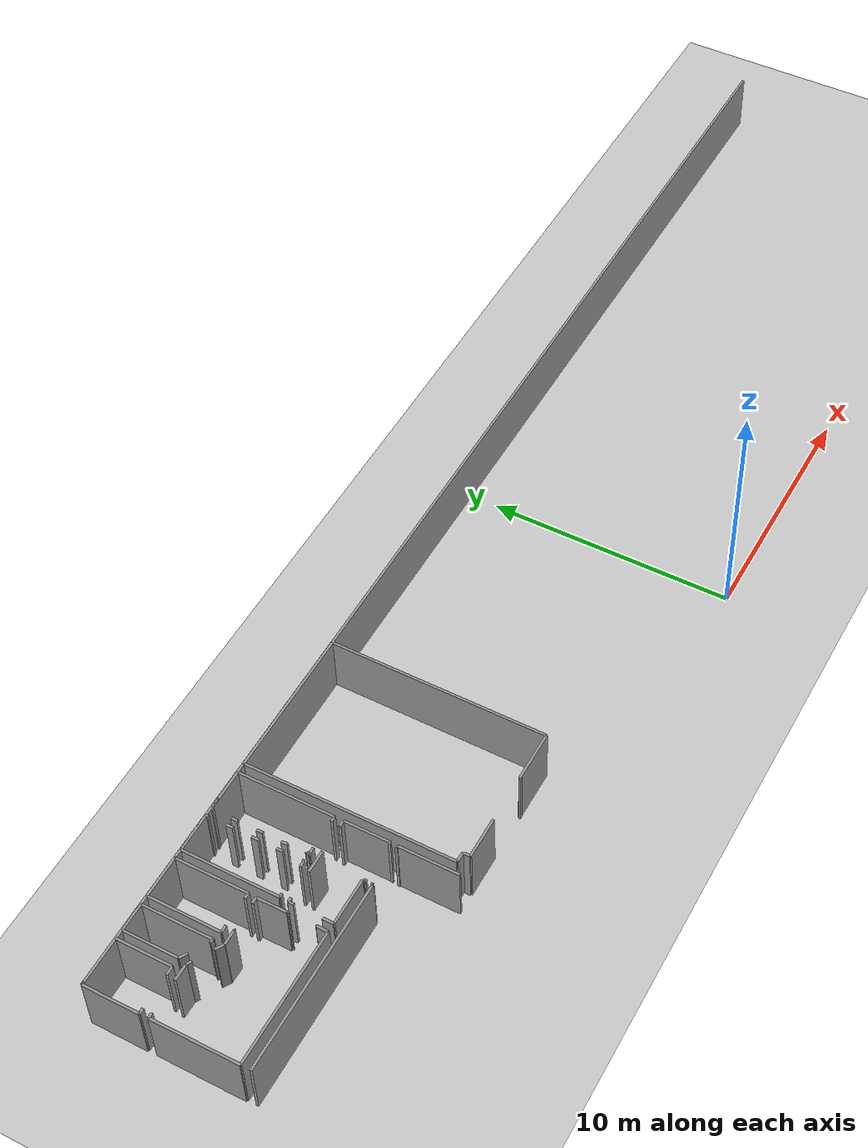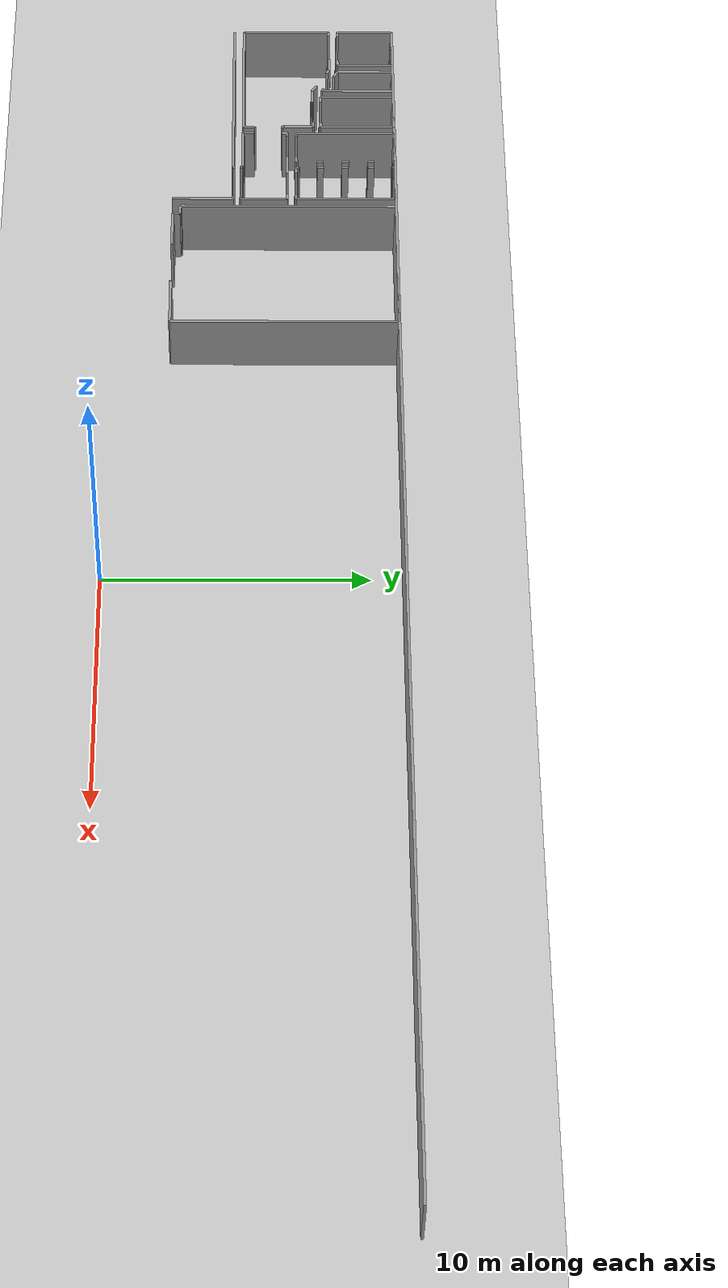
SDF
<sdf version="1.6">
 <world name="default">
  <model name="ground_plane">
   <static>1</static>
   <link name="link">
    <collision name="collision">
     <geometry><plane><normal>0 0 1</normal><size>100 100</size></plane></geometry>
     <surface><friction><ode><mu>100</mu><mu2>50</mu2></ode></friction></surface>
    </collision>
    <visual name="visual">
     <cast_shadows>0</cast_shadows>
     <geometry><plane><normal>0 0 1</normal><size>100 100</size></plane></geometry>
     <material>
      <script><uri>file://media/materials/scripts/gazebo.material</uri><name>Gazebo/Grey</name></script>
     </material>
    </visual>
   </link>
  </model>
  <model name="0510030938_A_40_1_102">
   <static>1</static>
   <link name="Wall_1">
    <collision name="Wall_1_Collision">
     <geometry><box><size>7.57650856591 0.1 2.5</size></box></geometry>
     <pose>3.78825428295 0 1.25 0 0 0</pose>
    </collision>
    <visual name="Wall_1_Visual">
     <pose>3.78825428295 0 1.25 0 0 0</pose>
     <geometry><box><size>7.57650856591 0.1 2.5</size></box></geometry>
     <material>
      <script><uri>file://media/materials/scripts/gazebo.material</uri><name>Gazebo/Grey</name></script>
      <ambient>1 1 1 1</ambient>
     </material>
    </visual>
    <pose>0.00724416653958 -6.43104061817 0 0 0 0.0</pose>
   </link>
   <link name="Wall_2">
    <collision name="Wall_2_Collision">
     <geometry><box><size>0.0350770169285 0.1 2.5</size></box></geometry>
     <pose>0.0175385084642 0 1.25 0 0 0</pose>
    </collision>
    <visual name="Wall_2_Visual">
     <pose>0.0175385084642 0 1.25 0 0 0</pose>
     <geometry><box><size>0.0350770169285 0.1 2.5</size></box></geometry>
     <material>
      <script><uri>file://media/materials/scripts/gazebo.material</uri><name>Gazebo/Grey</name></script>
      <ambient>1 1 1 1</ambient>
     </material>
    </visual>
    <pose>7.58375273245 -6.43104061817 0 0 0 1.57079632679</pose>
   </link>
   <link name="Wall_3">
    <collision name="Wall_3_Collision">
     <geometry><box><size>0.0847694575771 0.1 2.5</size></box></geometry>
     <pose>0.0423847287886 0 1.25 0 0 0</pose>
    </collision>
    <visual name="Wall_3_Visual">
     <pose>0.0423847287886 0 1.25 0 0 0</pose>
     <geometry><box><size>0.0847694575771 0.1 2.5</size></box></geometry>
     <material>
      <script><uri>file://media/materials/scripts/gazebo.material</uri><name>Gazebo/Grey</name></script>
      <ambient>1 1 1 1</ambient>
     </material>
    </visual>
    <pose>7.58375273245 -6.39596360124 0 0 0 0.0</pose>
   </link>
   <link name="Wall_4">
    <collision name="Wall_4_Collision">
     <geometry><box><size>0.0874383610391 0.1 2.5</size></box></geometry>
     <pose>0.0437191805195 0 1.25 0 0 0</pose>
    </collision>
    <visual name="Wall_4_Visual">
     <pose>0.0437191805195 0 1.25 0 0 0</pose>
     <geometry><box><size>0.0874383610391 0.1 2.5</size></box></geometry>
     <material>
      <script><uri>file://media/materials/scripts/gazebo.material</uri><name>Gazebo/Grey</name></script>
      <ambient>1 1 1 1</ambient>
     </material>
    </visual>
    <pose>9.22500127091 -6.39596360124 0 0 0 0.0</pose>
   </link>
   <link name="Wall_5">
    <collision name="Wall_5_Collision">
     <geometry><box><size>2.42018707742 0.1 2.5</size></box></geometry>
     <pose>1.21009353871 0 1.25 0 0 0</pose>
    </collision>
    <visual name="Wall_5_Visual">
     <pose>1.21009353871 0 1.25 0 0 0</pose>
     <geometry><box><size>2.42018707742 0.1 2.5</size></box></geometry>
     <material>
      <script><uri>file://media/materials/scripts/gazebo.material</uri><name>Gazebo/Grey</name></script>
      <ambient>1 1 1 1</ambient>
     </material>
    </visual>
    <pose>9.31243963195 -6.39596360124 0 0 0 -1.57079632679</pose>
   </link>
   <link name="Wall_19">
    <collision name="Wall_19_Collision">
     <geometry><box><size>0.436047989426 0.1 2.5</size></box></geometry>
     <pose>0.218023994713 0 1.25 0 0 0</pose>
    </collision>
    <visual name="Wall_19_Visual">
     <pose>0.218023994713 0 1.25 0 0 0</pose>
     <geometry><box><size>0.436047989426 0.1 2.5</size></box></geometry>
     <material>
      <script><uri>file://media/materials/scripts/gazebo.material</uri><name>Gazebo/Grey</name></script>
      <ambient>1 1 1 1</ambient>
     </material>
    </visual>
    <pose>5.7366173555 -6.04138071272 0 0 0 1.57079632679</pose>
   </link>
   <link name="Wall_20">
    <collision name="Wall_20_Collision">
     <geometry><box><size>0.213131005033 0.1 2.5</size></box></geometry>
     <pose>0.106565502516 0 1.25 0 0 0</pose>
    </collision>
    <visual name="Wall_20_Visual">
     <pose>0.106565502516 0 1.25 0 0 0</pose>
     <geometry><box><size>0.213131005033 0.1 2.5</size></box></geometry>
     <material>
      <script><uri>file://media/materials/scripts/gazebo.material</uri><name>Gazebo/Grey</name></script>
      <ambient>1 1 1 1</ambient>
     </material>
    </visual>
    <pose>5.7366173555 -4.48731635402 0 0 0 1.57079632679</pose>
   </link>
   <link name="Wall_21">
    <collision name="Wall_21_Collision">
     <geometry><box><size>0.17144527477 0.1 2.5</size></box></geometry>
     <pose>0.085722637385 0 1.25 0 0 0</pose>
    </collision>
    <visual name="Wall_21_Visual">
     <pose>0.085722637385 0 1.25 0 0 0</pose>
     <geometry><box><size>0.17144527477 0.1 2.5</size></box></geometry>
     <material>
      <script><uri>file://media/materials/scripts/gazebo.material</uri><name>Gazebo/Grey</name></script>
      <ambient>1 1 1 1</ambient>
     </material>
    </visual>
    <pose>5.7366173555 -4.27418534899 0 0 0 0.0</pose>
   </link>
   <link name="Wall_22">
    <collision name="Wall_22_Collision">
     <geometry><box><size>0.904758273601 0.1 2.5</size></box></geometry>
     <pose>0.4523791368 0 1.25 0 0 0</pose>
    </collision>
    <visual name="Wall_22_Visual">
     <pose>0.4523791368 0 1.25 0 0 0</pose>
     <geometry><box><size>0.904758273601 0.1 2.5</size></box></geometry>
     <material>
      <script><uri>file://media/materials/scripts/gazebo.material</uri><name>Gazebo/Grey</name></script>
      <ambient>1 1 1 1</ambient>
     </material>
    </visual>
    <pose>7.02951044685 -4.27418534899 0 0 0 0.0</pose>
   </link>
   <link name="Wall_23">
    <collision name="Wall_23_Collision">
     <geometry><box><size>0.254435463372 0.1 2.5</size></box></geometry>
     <pose>0.127217731686 0 1.25 0 0 0</pose>
    </collision>
    <visual name="Wall_23_Visual">
     <pose>0.127217731686 0 1.25 0 0 0</pose>
     <geometry><box><size>0.254435463372 0.1 2.5</size></box></geometry>
     <material>
      <script><uri>file://media/materials/scripts/gazebo.material</uri><name>Gazebo/Grey</name></script>
      <ambient>1 1 1 1</ambient>
     </material>
    </visual>
    <pose>9.06524833511 -4.27418534899 0 0 0 0.0</pose>
   </link>
   <link name="Wall_24">
    <collision name="Wall_24_Collision">
     <geometry><box><size>1.84039957298 0.1 2.5</size></box></geometry>
     <pose>0.920199786488 0 1.25 0 0 0</pose>
    </collision>
    <visual name="Wall_24_Visual">
     <pose>0.920199786488 0 1.25 0 0 0</pose>
     <geometry><box><size>1.84039957298 0.1 2.5</size></box></geometry>
     <material>
      <script><uri>file://media/materials/scripts/gazebo.material</uri><name>Gazebo/Grey</name></script>
      <ambient>1 1 1 1</ambient>
     </material>
    </visual>
    <pose>9.31968379849 -4.27418534899 0 0 0 -1.57079632679</pose>
   </link>
   <link name="Wall_25">
    <collision name="Wall_25_Collision">
     <geometry><box><size>0.0721874841137 0.1 2.5</size></box></geometry>
     <pose>0.0360937420568 0 1.25 0 0 0</pose>
    </collision>
    <visual name="Wall_25_Visual">
     <pose>0.0360937420568 0 1.25 0 0 0</pose>
     <geometry><box><size>0.0721874841137 0.1 2.5</size></box></geometry>
     <material>
      <script><uri>file://media/materials/scripts/gazebo.material</uri><name>Gazebo/Grey</name></script>
      <ambient>1 1 1 1</ambient>
     </material>
    </visual>
    <pose>9.31968379849 -6.11458492197 0 0 0 3.14159265359</pose>
   </link>
   <link name="Wall_26">
    <collision name="Wall_26_Collision">
     <geometry><box><size>0.0908698083473 0.1 2.5</size></box></geometry>
     <pose>0.0454349041737 0 1.25 0 0 0</pose>
    </collision>
    <visual name="Wall_26_Visual">
     <pose>0.0454349041737 0 1.25 0 0 0</pose>
     <geometry><box><size>0.0908698083473 0.1 2.5</size></box></geometry>
     <material>
      <script><uri>file://media/materials/scripts/gazebo.material</uri><name>Gazebo/Grey</name></script>
      <ambient>1 1 1 1</ambient>
     </material>
    </visual>
    <pose>7.69241523054 -6.11458492197 0 0 0 3.14159265359</pose>
   </link>
   <link name="Wall_27">
    <collision name="Wall_27_Collision">
     <geometry><box><size>0.0828630979615 0.1 2.5</size></box></geometry>
     <pose>0.0414315489807 0 1.25 0 0 0</pose>
    </collision>
    <visual name="Wall_27_Visual">
     <pose>0.0414315489807 0 1.25 0 0 0</pose>
     <geometry><box><size>0.0828630979615 0.1 2.5</size></box></geometry>
     <material>
      <script><uri>file://media/materials/scripts/gazebo.material</uri><name>Gazebo/Grey</name></script>
      <ambient>1 1 1 1</ambient>
     </material>
    </visual>
    <pose>7.6015454222 -6.11458492197 0 0 0 1.57079632679</pose>
   </link>
   <link name="Wall_28">
    <collision name="Wall_28_Collision">
     <geometry><box><size>1.86495307933 0.1 2.5</size></box></geometry>
     <pose>0.932476539663 0 1.25 0 0 0</pose>
    </collision>
    <visual name="Wall_28_Visual">
     <pose>0.932476539663 0 1.25 0 0 0</pose>
     <geometry><box><size>1.86495307933 0.1 2.5</size></box></geometry>
     <material>
      <script><uri>file://media/materials/scripts/gazebo.material</uri><name>Gazebo/Grey</name></script>
      <ambient>1 1 1 1</ambient>
     </material>
    </visual>
    <pose>7.6015454222 -6.031721824 0 0 0 -3.13641347133</pose>
   </link>
   <link name="Wall_29">
    <collision name="Wall_29_Collision">
     <geometry><box><size>3.47059122566 0.1 2.5</size></box></geometry>
     <pose>1.73529561283 0 1.25 0 0 0</pose>
    </collision>
    <visual name="Wall_29_Visual">
     <pose>1.73529561283 0 1.25 0 0 0</pose>
     <geometry><box><size>3.47059122566 0.1 2.5</size></box></geometry>
     <material>
      <script><uri>file://media/materials/scripts/gazebo.material</uri><name>Gazebo/Grey</name></script>
      <ambient>1 1 1 1</ambient>
     </material>
    </visual>
    <pose>0.016775964618 -6.04112653144 0 0 0 1.57079632679</pose>
   </link>
   <link name="Wall_30">
    <collision name="Wall_30_Collision">
     <geometry><box><size>0.20067612221 0.1 2.5</size></box></geometry>
     <pose>0.100338061105 0 1.25 0 0 0</pose>
    </collision>
    <visual name="Wall_30_Visual">
     <pose>0.100338061105 0 1.25 0 0 0</pose>
     <geometry><box><size>0.20067612221 0.1 2.5</size></box></geometry>
     <material>
      <script><uri>file://media/materials/scripts/gazebo.material</uri><name>Gazebo/Grey</name></script>
      <ambient>1 1 1 1</ambient>
     </material>
    </visual>
    <pose>0.016775964618 -2.57053530578 0 0 0 0.0</pose>
   </link>
   <link name="Wall_31">
    <collision name="Wall_31_Collision">
     <geometry><box><size>0.654516801383 0.1 2.5</size></box></geometry>
     <pose>0.327258400691 0 1.25 0 0 0</pose>
    </collision>
    <visual name="Wall_31_Visual">
     <pose>0.327258400691 0 1.25 0 0 0</pose>
     <geometry><box><size>0.654516801383 0.1 2.5</size></box></geometry>
     <material>
      <script><uri>file://media/materials/scripts/gazebo.material</uri><name>Gazebo/Grey</name></script>
      <ambient>1 1 1 1</ambient>
     </material>
    </visual>
    <pose>1.53144222459 -2.57053530578 0 0 0 0.0</pose>
   </link>
   <link name="Wall_32">
    <collision name="Wall_32_Collision">
     <geometry><box><size>0.209723164445 0.1 2.5</size></box></geometry>
     <pose>0.104861582223 0 1.25 0 0 0</pose>
    </collision>
    <visual name="Wall_32_Visual">
     <pose>0.104861582223 0 1.25 0 0 0</pose>
     <geometry><box><size>0.209723164445 0.1 2.5</size></box></geometry>
     <material>
      <script><uri>file://media/materials/scripts/gazebo.material</uri><name>Gazebo/Grey</name></script>
      <ambient>1 1 1 1</ambient>
     </material>
    </visual>
    <pose>2.18595902598 -2.57053530578 0 0 0 -0.524933782635</pose>
   </link>
   <link name="Wall_33">
    <collision name="Wall_33_Collision">
     <geometry><box><size>0.343461699112 0.1 2.5</size></box></geometry>
     <pose>0.171730849556 0 1.25 0 0 0</pose>
    </collision>
    <visual name="Wall_33_Visual">
     <pose>0.171730849556 0 1.25 0 0 0</pose>
     <geometry><box><size>0.343461699112 0.1 2.5</size></box></geometry>
     <material>
      <script><uri>file://media/materials/scripts/gazebo.material</uri><name>Gazebo/Grey</name></script>
      <ambient>1 1 1 1</ambient>
     </material>
    </visual>
    <pose>3.08868384932 -3.0904631183 0 0 0 -0.563266863326</pose>
   </link>
   <link name="Wall_34">
    <collision name="Wall_34_Collision">
     <geometry><box><size>0.625158863301 0.1 2.5</size></box></geometry>
     <pose>0.312579431651 0 1.25 0 0 0</pose>
    </collision>
    <visual name="Wall_34_Visual">
     <pose>0.312579431651 0 1.25 0 0 0</pose>
     <geometry><box><size>0.625158863301 0.1 2.5</size></box></geometry>
     <material>
      <script><uri>file://media/materials/scripts/gazebo.material</uri><name>Gazebo/Grey</name></script>
      <ambient>1 1 1 1</ambient>
     </material>
    </visual>
    <pose>3.37908596411 -3.27385491332 0 0 0 0.0</pose>
   </link>
   <link name="Wall_35">
    <collision name="Wall_35_Collision">
     <geometry><box><size>0.0219866809008 0.1 2.5</size></box></geometry>
     <pose>0.0109933404504 0 1.25 0 0 0</pose>
    </collision>
    <visual name="Wall_35_Visual">
     <pose>0.0109933404504 0 1.25 0 0 0</pose>
     <geometry><box><size>0.0219866809008 0.1 2.5</size></box></geometry>
     <material>
      <script><uri>file://media/materials/scripts/gazebo.material</uri><name>Gazebo/Grey</name></script>
      <ambient>1 1 1 1</ambient>
     </material>
    </visual>
    <pose>4.00424482741 -3.27385491332 0 0 0 1.57079632679</pose>
   </link>
   <link name="Wall_36">
    <collision name="Wall_36_Collision">
     <geometry><box><size>0.245793299781 0.1 2.5</size></box></geometry>
     <pose>0.122896649891 0 1.25 0 0 0</pose>
    </collision>
    <visual name="Wall_36_Visual">
     <pose>0.122896649891 0 1.25 0 0 0</pose>
     <geometry><box><size>0.245793299781 0.1 2.5</size></box></geometry>
     <material>
      <script><uri>file://media/materials/scripts/gazebo.material</uri><name>Gazebo/Grey</name></script>
      <ambient>1 1 1 1</ambient>
     </material>
    </visual>
    <pose>5.12899700066 -3.25186823242 0 0 0 0.0</pose>
   </link>
   <link name="Wall_37">
    <collision name="Wall_37_Collision">
     <geometry><box><size>1.20647145544 0.1 2.5</size></box></geometry>
     <pose>0.603235727721 0 1.25 0 0 0</pose>
    </collision>
    <visual name="Wall_37_Visual">
     <pose>0.603235727721 0 1.25 0 0 0</pose>
     <geometry><box><size>1.20647145544 0.1 2.5</size></box></geometry>
     <material>
      <script><uri>file://media/materials/scripts/gazebo.material</uri><name>Gazebo/Grey</name></script>
      <ambient>1 1 1 1</ambient>
     </material>
    </visual>
    <pose>5.37479030044 -3.25186823242 0 0 0 -1.57079632679</pose>
   </link>
   <link name="Wall_38">
    <collision name="Wall_38_Collision">
     <geometry><box><size>0.0491840780845 0.1 2.5</size></box></geometry>
     <pose>0.0245920390422 0 1.25 0 0 0</pose>
    </collision>
    <visual name="Wall_38_Visual">
     <pose>0.0245920390422 0 1.25 0 0 0</pose>
     <geometry><box><size>0.0491840780845 0.1 2.5</size></box></geometry>
     <material>
      <script><uri>file://media/materials/scripts/gazebo.material</uri><name>Gazebo/Grey</name></script>
      <ambient>1 1 1 1</ambient>
     </material>
    </visual>
    <pose>5.37479030044 -4.45833968787 0 0 0 0.0</pose>
   </link>
   <link name="Wall_39">
    <collision name="Wall_39_Collision">
     <geometry><box><size>0.0334248385949 0.1 2.5</size></box></geometry>
     <pose>0.0167124192974 0 1.25 0 0 0</pose>
    </collision>
    <visual name="Wall_39_Visual">
     <pose>0.0167124192974 0 1.25 0 0 0</pose>
     <geometry><box><size>0.0334248385949 0.1 2.5</size></box></geometry>
     <material>
      <script><uri>file://media/materials/scripts/gazebo.material</uri><name>Gazebo/Grey</name></script>
      <ambient>1 1 1 1</ambient>
     </material>
    </visual>
    <pose>5.42397437853 -5.59008184637 0 0 0 3.14159265359</pose>
   </link>
   <link name="Wall_40">
    <collision name="Wall_40_Collision">
     <geometry><box><size>0.445452696863 0.1 2.5</size></box></geometry>
     <pose>0.222726348432 0 1.25 0 0 0</pose>
    </collision>
    <visual name="Wall_40_Visual">
     <pose>0.222726348432 0 1.25 0 0 0</pose>
     <geometry><box><size>0.445452696863 0.1 2.5</size></box></geometry>
     <material>
      <script><uri>file://media/materials/scripts/gazebo.material</uri><name>Gazebo/Grey</name></script>
      <ambient>1 1 1 1</ambient>
     </material>
    </visual>
    <pose>5.39054953993 -5.59008184637 0 0 0 -1.57079632679</pose>
   </link>
   <link name="Wall_41">
    <collision name="Wall_41_Collision">
     <geometry><box><size>5.37377648485 0.1 2.5</size></box></geometry>
     <pose>2.68688824242 0 1.25 0 0 0</pose>
    </collision>
    <visual name="Wall_41_Visual">
     <pose>2.68688824242 0 1.25 0 0 0</pose>
     <geometry><box><size>5.37377648485 0.1 2.5</size></box></geometry>
     <material>
      <script><uri>file://media/materials/scripts/gazebo.material</uri><name>Gazebo/Grey</name></script>
      <ambient>1 1 1 1</ambient>
     </material>
    </visual>
    <pose>5.39054953993 -6.03553454324 0 0 0 -3.14055204663</pose>
   </link>
   <link name="Wall_42">
    <collision name="Wall_42_Collision">
     <geometry><box><size>2.23044075034 0.1 2.5</size></box></geometry>
     <pose>1.11522037517 0 1.25 0 0 0</pose>
    </collision>
    <visual name="Wall_42_Visual">
     <pose>1.11522037517 0 1.25 0 0 0</pose>
     <geometry><box><size>2.23044075034 0.1 2.5</size></box></geometry>
     <material>
      <script><uri>file://media/materials/scripts/gazebo.material</uri><name>Gazebo/Grey</name></script>
      <ambient>1 1 1 1</ambient>
     </material>
    </visual>
    <pose>0.0 -2.23044075034 0 0 0 1.57079632679</pose>
   </link>
   <link name="Wall_43">
    <collision name="Wall_43_Collision">
     <geometry><box><size>1.91360378222 0.1 2.5</size></box></geometry>
     <pose>0.956801891109 0 1.25 0 0 0</pose>
    </collision>
    <visual name="Wall_43_Visual">
     <pose>0.956801891109 0 1.25 0 0 0</pose>
     <geometry><box><size>1.91360378222 0.1 2.5</size></box></geometry>
     <material>
      <script><uri>file://media/materials/scripts/gazebo.material</uri><name>Gazebo/Grey</name></script>
      <ambient>1 1 1 1</ambient>
     </material>
    </visual>
   </link>
   <link name="Wall_44">
    <collision name="Wall_44_Collision">
     <geometry><box><size>2.22217985868 0.1 2.5</size></box></geometry>
     <pose>1.11108992934 0 1.25 0 0 0</pose>
    </collision>
    <visual name="Wall_44_Visual">
     <pose>1.11108992934 0 1.25 0 0 0</pose>
     <geometry><box><size>2.22217985868 0.1 2.5</size></box></geometry>
     <material>
      <script><uri>file://media/materials/scripts/gazebo.material</uri><name>Gazebo/Grey</name></script>
      <ambient>1 1 1 1</ambient>
     </material>
    </visual>
    <pose>1.91360378222 -0.0 0 0 0 -1.57079632679</pose>
   </link>
   <link name="Wall_45">
    <collision name="Wall_45_Collision">
     <geometry><box><size>0.334883839154 0.1 2.5</size></box></geometry>
     <pose>0.167441919577 0 1.25 0 0 0</pose>
    </collision>
    <visual name="Wall_45_Visual">
     <pose>0.167441919577 0 1.25 0 0 0</pose>
     <geometry><box><size>0.334883839154 0.1 2.5</size></box></geometry>
     <material>
      <script><uri>file://media/materials/scripts/gazebo.material</uri><name>Gazebo/Grey</name></script>
      <ambient>1 1 1 1</ambient>
     </material>
    </visual>
    <pose>1.91360378222 -2.22217985868 0 0 0 3.14159265359</pose>
   </link>
   <link name="Wall_46">
    <collision name="Wall_46_Collision">
     <geometry><box><size>0.22192697144 0.1 2.5</size></box></geometry>
     <pose>0.11096348572 0 1.25 0 0 0</pose>
    </collision>
    <visual name="Wall_46_Visual">
     <pose>0.11096348572 0 1.25 0 0 0</pose>
     <geometry><box><size>0.22192697144 0.1 2.5</size></box></geometry>
     <material>
      <script><uri>file://media/materials/scripts/gazebo.material</uri><name>Gazebo/Grey</name></script>
      <ambient>1 1 1 1</ambient>
     </material>
    </visual>
    <pose>0.221773168624 -2.22217985868 0 0 0 -3.1043605835</pose>
   </link>
   <link name="Wall_47">
    <collision name="Wall_47_Collision">
     <geometry><box><size>2.2005744497 0.1 2.5</size></box></geometry>
     <pose>1.10028722485 0 1.25 0 0 0</pose>
    </collision>
    <visual name="Wall_47_Visual">
     <pose>1.10028722485 0 1.25 0 0 0</pose>
     <geometry><box><size>2.2005744497 0.1 2.5</size></box></geometry>
     <material>
      <script><uri>file://media/materials/scripts/gazebo.material</uri><name>Gazebo/Grey</name></script>
      <ambient>1 1 1 1</ambient>
     </material>
    </visual>
    <pose>2.26793248945 -2.21366478573 0 0 0 1.57079632679</pose>
   </link>
   <link name="Wall_48">
    <collision name="Wall_48_Collision">
     <geometry><box><size>1.10174876722 0.1 2.5</size></box></geometry>
     <pose>0.55087438361 0 1.25 0 0 0</pose>
    </collision>
    <visual name="Wall_48_Visual">
     <pose>0.55087438361 0 1.25 0 0 0</pose>
     <geometry><box><size>1.10174876722 0.1 2.5</size></box></geometry>
     <material>
      <script><uri>file://media/materials/scripts/gazebo.material</uri><name>Gazebo/Grey</name></script>
      <ambient>1 1 1 1</ambient>
     </material>
    </visual>
    <pose>2.26793248945 -0.0130903360277 0 0 0 0.0</pose>
   </link>
   <link name="Wall_49">
    <collision name="Wall_49_Collision">
     <geometry><box><size>2.85242234762 0.1 2.5</size></box></geometry>
     <pose>1.42621117381 0 1.25 0 0 0</pose>
    </collision>
    <visual name="Wall_49_Visual">
     <pose>1.42621117381 0 1.25 0 0 0</pose>
     <geometry><box><size>2.85242234762 0.1 2.5</size></box></geometry>
     <material>
      <script><uri>file://media/materials/scripts/gazebo.material</uri><name>Gazebo/Grey</name></script>
      <ambient>1 1 1 1</ambient>
     </material>
    </visual>
    <pose>3.36968125667 -0.0130903360277 0 0 0 -1.57079632679</pose>
   </link>
   <link name="Wall_50">
    <collision name="Wall_50_Collision">
     <geometry><box><size>0.139142894435 0.1 2.5</size></box></geometry>
     <pose>0.0695714472177 0 1.25 0 0 0</pose>
    </collision>
    <visual name="Wall_50_Visual">
     <pose>0.0695714472177 0 1.25 0 0 0</pose>
     <geometry><box><size>0.139142894435 0.1 2.5</size></box></geometry>
     <material>
      <script><uri>file://media/materials/scripts/gazebo.material</uri><name>Gazebo/Grey</name></script>
      <ambient>1 1 1 1</ambient>
     </material>
    </visual>
    <pose>3.36968125667 -2.86551268365 0 0 0 2.64771314672</pose>
   </link>
   <link name="Wall_51">
    <collision name="Wall_51_Collision">
     <geometry><box><size>0.337085327396 0.1 2.5</size></box></geometry>
     <pose>0.168542663698 0 1.25 0 0 0</pose>
    </collision>
    <visual name="Wall_51_Visual">
     <pose>0.168542663698 0 1.25 0 0 0</pose>
     <geometry><box><size>0.337085327396 0.1 2.5</size></box></geometry>
     <material>
      <script><uri>file://media/materials/scripts/gazebo.material</uri><name>Gazebo/Grey</name></script>
      <ambient>1 1 1 1</ambient>
     </material>
    </visual>
    <pose>2.54918407808 -2.39947130293 0 0 0 2.55777281348</pose>
   </link>
   <link name="Wall_52">
    <collision name="Wall_52_Collision">
     <geometry><box><size>2.92994763866 0.1 2.5</size></box></geometry>
     <pose>1.46497381933 0 1.25 0 0 0</pose>
    </collision>
    <visual name="Wall_52_Visual">
     <pose>1.46497381933 0 1.25 0 0 0</pose>
     <geometry><box><size>2.92994763866 0.1 2.5</size></box></geometry>
     <material>
      <script><uri>file://media/materials/scripts/gazebo.material</uri><name>Gazebo/Grey</name></script>
      <ambient>1 1 1 1</ambient>
     </material>
    </visual>
    <pose>3.72718722993 -2.93261654212 0 0 0 1.57079632679</pose>
   </link>
   <link name="Wall_53">
    <collision name="Wall_53_Collision">
     <geometry><box><size>1.66323521936 0.1 2.5</size></box></geometry>
     <pose>0.831617609679 0 1.25 0 0 0</pose>
    </collision>
    <visual name="Wall_53_Visual">
     <pose>0.831617609679 0 1.25 0 0 0</pose>
     <geometry><box><size>1.66323521936 0.1 2.5</size></box></geometry>
     <material>
      <script><uri>file://media/materials/scripts/gazebo.material</uri><name>Gazebo/Grey</name></script>
      <ambient>1 1 1 1</ambient>
     </material>
    </visual>
    <pose>3.72718722993 -0.00266890346195 0 0 0 0.0</pose>
   </link>
   <link name="Wall_54">
    <collision name="Wall_54_Collision">
     <geometry><box><size>2.93401453917 0.1 2.5</size></box></geometry>
     <pose>1.46700726958 0 1.25 0 0 0</pose>
    </collision>
    <visual name="Wall_54_Visual">
     <pose>1.46700726958 0 1.25 0 0 0</pose>
     <geometry><box><size>2.93401453917 0.1 2.5</size></box></geometry>
     <material>
      <script><uri>file://media/materials/scripts/gazebo.material</uri><name>Gazebo/Grey</name></script>
      <ambient>1 1 1 1</ambient>
     </material>
    </visual>
    <pose>5.39042244929 -0.00266890346195 0 0 0 -1.57079632679</pose>
   </link>
   <link name="Wall_55">
    <collision name="Wall_55_Collision">
     <geometry><box><size>0.225331706573 0.1 2.5</size></box></geometry>
     <pose>0.112665853287 0 1.25 0 0 0</pose>
    </collision>
    <visual name="Wall_55_Visual">
     <pose>0.112665853287 0 1.25 0 0 0</pose>
     <geometry><box><size>0.225331706573 0.1 2.5</size></box></geometry>
     <material>
      <script><uri>file://media/materials/scripts/gazebo.material</uri><name>Gazebo/Grey</name></script>
      <ambient>1 1 1 1</ambient>
     </material>
    </visual>
    <pose>5.39042244929 -2.93668344263 0 0 0 3.14159265359</pose>
   </link>
   <link name="Wall_56">
    <collision name="Wall_56_Collision">
     <geometry><box><size>0.278104060691 0.1 2.5</size></box></geometry>
     <pose>0.139052030346 0 1.25 0 0 0</pose>
    </collision>
    <visual name="Wall_56_Visual">
     <pose>0.139052030346 0 1.25 0 0 0</pose>
     <geometry><box><size>0.278104060691 0.1 2.5</size></box></geometry>
     <material>
      <script><uri>file://media/materials/scripts/gazebo.material</uri><name>Gazebo/Grey</name></script>
      <ambient>1 1 1 1</ambient>
     </material>
    </visual>
    <pose>4.00526155254 -2.93668344263 0 0 0 3.1269684677</pose>
   </link>
   <link name="Wall_57">
    <collision name="Wall_57_Collision">
     <geometry><box><size>3.91057902496 0.1 2.5</size></box></geometry>
     <pose>1.95528951248 0 1.25 0 0 0</pose>
    </collision>
    <visual name="Wall_57_Visual">
     <pose>1.95528951248 0 1.25 0 0 0</pose>
     <geometry><box><size>3.91057902496 0.1 2.5</size></box></geometry>
     <material>
      <script><uri>file://media/materials/scripts/gazebo.material</uri><name>Gazebo/Grey</name></script>
      <ambient>1 1 1 1</ambient>
     </material>
    </visual>
    <pose>5.75555386101 -3.91833155406 0 0 0 1.57079632679</pose>
   </link>
   <link name="Wall_58">
    <collision name="Wall_58_Collision">
     <geometry><box><size>1.55660617152 0.1 2.5</size></box></geometry>
     <pose>0.778303085761 0 1.25 0 0 0</pose>
    </collision>
    <visual name="Wall_58_Visual">
     <pose>0.778303085761 0 1.25 0 0 0</pose>
     <geometry><box><size>1.55660617152 0.1 2.5</size></box></geometry>
     <material>
      <script><uri>file://media/materials/scripts/gazebo.material</uri><name>Gazebo/Grey</name></script>
      <ambient>1 1 1 1</ambient>
     </material>
    </visual>
    <pose>5.75555386101 -0.00775252910375 0 0 0 0.0</pose>
   </link>
   <link name="Wall_59">
    <collision name="Wall_59_Collision">
     <geometry><box><size>0.0996390625794 0.1 2.5</size></box></geometry>
     <pose>0.0498195312897 0 1.25 0 0 0</pose>
    </collision>
    <visual name="Wall_59_Visual">
     <pose>0.0498195312897 0 1.25 0 0 0</pose>
     <geometry><box><size>0.0996390625794 0.1 2.5</size></box></geometry>
     <material>
      <script><uri>file://media/materials/scripts/gazebo.material</uri><name>Gazebo/Grey</name></script>
      <ambient>1 1 1 1</ambient>
     </material>
    </visual>
    <pose>7.31216003254 -0.00775252910375 0 0 0 -1.57079632679</pose>
   </link>
   <link name="Wall_60">
    <collision name="Wall_60_Collision">
     <geometry><box><size>0.267017436836 0.1 2.5</size></box></geometry>
     <pose>0.133508718418 0 1.25 0 0 0</pose>
    </collision>
    <visual name="Wall_60_Visual">
     <pose>0.133508718418 0 1.25 0 0 0</pose>
     <geometry><box><size>0.267017436836 0.1 2.5</size></box></geometry>
     <material>
      <script><uri>file://media/materials/scripts/gazebo.material</uri><name>Gazebo/Grey</name></script>
      <ambient>1 1 1 1</ambient>
     </material>
    </visual>
    <pose>7.31216003254 -0.83295206141 0 0 0 -1.57079632679</pose>
   </link>
   <link name="Wall_61">
    <collision name="Wall_61_Collision">
     <geometry><box><size>0.276422144273 0.1 2.5</size></box></geometry>
     <pose>0.138211072137 0 1.25 0 0 0</pose>
    </collision>
    <visual name="Wall_61_Visual">
     <pose>0.138211072137 0 1.25 0 0 0</pose>
     <geometry><box><size>0.276422144273 0.1 2.5</size></box></geometry>
     <material>
      <script><uri>file://media/materials/scripts/gazebo.material</uri><name>Gazebo/Grey</name></script>
      <ambient>1 1 1 1</ambient>
     </material>
    </visual>
    <pose>7.31216003254 -1.8414162981 0 0 0 -1.57079632679</pose>
   </link>
   <link name="Wall_62">
    <collision name="Wall_62_Collision">
     <geometry><box><size>0.257612729399 0.1 2.5</size></box></geometry>
     <pose>0.128806364699 0 1.25 0 0 0</pose>
    </collision>
    <visual name="Wall_62_Visual">
     <pose>0.128806364699 0 1.25 0 0 0</pose>
     <geometry><box><size>0.257612729399 0.1 2.5</size></box></geometry>
     <material>
      <script><uri>file://media/materials/scripts/gazebo.material</uri><name>Gazebo/Grey</name></script>
      <ambient>1 1 1 1</ambient>
     </material>
    </visual>
    <pose>7.31216003254 -2.84034873672 0 0 0 -1.57079632679</pose>
   </link>
   <link name="Wall_63">
    <collision name="Wall_63_Collision">
     <geometry><box><size>0.0817192821921 0.1 2.5</size></box></geometry>
     <pose>0.040859641096 0 1.25 0 0 0</pose>
    </collision>
    <visual name="Wall_63_Visual">
     <pose>0.040859641096 0 1.25 0 0 0</pose>
     <geometry><box><size>0.0817192821921 0.1 2.5</size></box></geometry>
     <material>
      <script><uri>file://media/materials/scripts/gazebo.material</uri><name>Gazebo/Grey</name></script>
      <ambient>1 1 1 1</ambient>
     </material>
    </visual>
    <pose>7.31216003254 -3.84245844136 0 0 0 -1.57079632679</pose>
   </link>
   <link name="Wall_64">
    <collision name="Wall_64_Collision">
     <geometry><box><size>0.251258197346 0.1 2.5</size></box></geometry>
     <pose>0.125629098673 0 1.25 0 0 0</pose>
    </collision>
    <visual name="Wall_64_Visual">
     <pose>0.125629098673 0 1.25 0 0 0</pose>
     <geometry><box><size>0.251258197346 0.1 2.5</size></box></geometry>
     <material>
      <script><uri>file://media/materials/scripts/gazebo.material</uri><name>Gazebo/Grey</name></script>
      <ambient>1 1 1 1</ambient>
     </material>
    </visual>
    <pose>7.31216003254 -3.92417772355 0 0 0 3.14159265359</pose>
   </link>
   <link name="Wall_65">
    <collision name="Wall_65_Collision">
     <geometry><box><size>0.14627111386 0.1 2.5</size></box></geometry>
     <pose>0.0731355569299 0 1.25 0 0 0</pose>
    </collision>
    <visual name="Wall_65_Visual">
     <pose>0.0731355569299 0 1.25 0 0 0</pose>
     <geometry><box><size>0.14627111386 0.1 2.5</size></box></geometry>
     <material>
      <script><uri>file://media/materials/scripts/gazebo.material</uri><name>Gazebo/Grey</name></script>
      <ambient>1 1 1 1</ambient>
     </material>
    </visual>
    <pose>5.90170809822 -3.92417772355 0 0 0 3.10161396647</pose>
   </link>
   <link name="Wall_66">
    <collision name="Wall_66_Collision">
     <geometry><box><size>0.0879467236033 0.1 2.5</size></box></geometry>
     <pose>0.0439733618016 0 1.25 0 0 0</pose>
    </collision>
    <visual name="Wall_66_Visual">
     <pose>0.0439733618016 0 1.25 0 0 0</pose>
     <geometry><box><size>0.0879467236033 0.1 2.5</size></box></geometry>
     <material>
      <script><uri>file://media/materials/scripts/gazebo.material</uri><name>Gazebo/Grey</name></script>
      <ambient>1 1 1 1</ambient>
     </material>
    </visual>
    <pose>7.64729805297 -3.92023791368 0 0 0 1.57079632679</pose>
   </link>
   <link name="Wall_67">
    <collision name="Wall_67_Collision">
     <geometry><box><size>0.0261806720553 0.1 2.5</size></box></geometry>
     <pose>0.0130903360277 0 1.25 0 0 0</pose>
    </collision>
    <visual name="Wall_67_Visual">
     <pose>0.0130903360277 0 1.25 0 0 0</pose>
     <geometry><box><size>0.0261806720553 0.1 2.5</size></box></geometry>
     <material>
      <script><uri>file://media/materials/scripts/gazebo.material</uri><name>Gazebo/Grey</name></script>
      <ambient>1 1 1 1</ambient>
     </material>
    </visual>
    <pose>7.64729805297 -3.83229119008 0 0 0 3.14159265359</pose>
   </link>
   <link name="Wall_68">
    <collision name="Wall_68_Collision">
     <geometry><box><size>0.249987290936 0.1 2.5</size></box></geometry>
     <pose>0.124993645468 0 1.25 0 0 0</pose>
    </collision>
    <visual name="Wall_68_Visual">
     <pose>0.124993645468 0 1.25 0 0 0</pose>
     <geometry><box><size>0.249987290936 0.1 2.5</size></box></geometry>
     <material>
      <script><uri>file://media/materials/scripts/gazebo.material</uri><name>Gazebo/Grey</name></script>
      <ambient>1 1 1 1</ambient>
     </material>
    </visual>
    <pose>7.62111738092 -3.0883025774 0 0 0 1.57079632679</pose>
   </link>
   <link name="Wall_69">
    <collision name="Wall_69_Collision">
     <geometry><box><size>0.25291037568 0.1 2.5</size></box></geometry>
     <pose>0.12645518784 0 1.25 0 0 0</pose>
    </collision>
    <visual name="Wall_69_Visual">
     <pose>0.12645518784 0 1.25 0 0 0</pose>
     <geometry><box><size>0.25291037568 0.1 2.5</size></box></geometry>
     <material>
      <script><uri>file://media/materials/scripts/gazebo.material</uri><name>Gazebo/Grey</name></script>
      <ambient>1 1 1 1</ambient>
     </material>
    </visual>
    <pose>7.62111738092 -2.10652737532 0 0 0 1.57079632679</pose>
   </link>
   <link name="Wall_70">
    <collision name="Wall_70_Collision">
     <geometry><box><size>0.252656194398 0.1 2.5</size></box></geometry>
     <pose>0.126328097199 0 1.25 0 0 0</pose>
    </collision>
    <visual name="Wall_70_Visual">
     <pose>0.126328097199 0 1.25 0 0 0</pose>
     <geometry><box><size>0.252656194398 0.1 2.5</size></box></geometry>
     <material>
      <script><uri>file://media/materials/scripts/gazebo.material</uri><name>Gazebo/Grey</name></script>
      <ambient>1 1 1 1</ambient>
     </material>
    </visual>
    <pose>7.62111738092 -1.08116008337 0 0 0 1.57079632679</pose>
   </link>
   <link name="Wall_71">
    <collision name="Wall_71_Collision">
     <geometry><box><size>0.0821005541152 0.1 2.5</size></box></geometry>
     <pose>0.0410502770576 0 1.25 0 0 0</pose>
    </collision>
    <visual name="Wall_71_Visual">
     <pose>0.0410502770576 0 1.25 0 0 0</pose>
     <geometry><box><size>0.0821005541152 0.1 2.5</size></box></geometry>
     <material>
      <script><uri>file://media/materials/scripts/gazebo.material</uri><name>Gazebo/Grey</name></script>
      <ambient>1 1 1 1</ambient>
     </material>
    </visual>
    <pose>7.62111738092 -0.101799603477 0 0 0 1.57079632679</pose>
   </link>
   <link name="Wall_72">
    <collision name="Wall_72_Collision">
     <geometry><box><size>1.69183061359 0.1 2.5</size></box></geometry>
     <pose>0.845915306797 0 1.25 0 0 0</pose>
    </collision>
    <visual name="Wall_72_Visual">
     <pose>0.845915306797 0 1.25 0 0 0</pose>
     <geometry><box><size>1.69183061359 0.1 2.5</size></box></geometry>
     <material>
      <script><uri>file://media/materials/scripts/gazebo.material</uri><name>Gazebo/Grey</name></script>
      <ambient>1 1 1 1</ambient>
     </material>
    </visual>
    <pose>7.62111738092 -0.019699049362 0 0 0 0.0</pose>
   </link>
   <link name="Wall_73">
    <collision name="Wall_73_Collision">
     <geometry><box><size>3.90930811855 0.1 2.5</size></box></geometry>
     <pose>1.95465405928 0 1.25 0 0 0</pose>
    </collision>
    <visual name="Wall_73_Visual">
     <pose>1.95465405928 0 1.25 0 0 0</pose>
     <geometry><box><size>3.90930811855 0.1 2.5</size></box></geometry>
     <material>
      <script><uri>file://media/materials/scripts/gazebo.material</uri><name>Gazebo/Grey</name></script>
      <ambient>1 1 1 1</ambient>
     </material>
    </visual>
    <pose>9.31294799451 -0.019699049362 0 0 0 -1.57079632679</pose>
   </link>
   <link name="Wall_74">
    <collision name="Wall_74_Collision">
     <geometry><box><size>0.211860098622 0.1 2.5</size></box></geometry>
     <pose>0.105930049311 0 1.25 0 0 0</pose>
    </collision>
    <visual name="Wall_74_Visual">
     <pose>0.105930049311 0 1.25 0 0 0</pose>
     <geometry><box><size>0.211860098622 0.1 2.5</size></box></geometry>
     <material>
      <script><uri>file://media/materials/scripts/gazebo.material</uri><name>Gazebo/Grey</name></script>
      <ambient>1 1 1 1</ambient>
     </material>
    </visual>
    <pose>9.31294799451 -3.92900716791 0 0 0 3.14159265359</pose>
   </link>
   <link name="Wall_75">
    <collision name="Wall_75_Collision">
     <geometry><box><size>0.26512904964 0.1 2.5</size></box></geometry>
     <pose>0.13256452482 0 1.25 0 0 0</pose>
    </collision>
    <visual name="Wall_75_Visual">
     <pose>0.13256452482 0 1.25 0 0 0</pose>
     <geometry><box><size>0.26512904964 0.1 2.5</size></box></geometry>
     <material>
      <script><uri>file://media/materials/scripts/gazebo.material</uri><name>Gazebo/Grey</name></script>
      <ambient>1 1 1 1</ambient>
     </material>
    </visual>
    <pose>7.91228203955 -3.92900716791 0 0 0 3.10851120162</pose>
   </link>
   <link name="Wall_76">
    <collision name="Wall_76_Collision">
     <geometry><box><size>8.46766814092 0.1 2.5</size></box></geometry>
     <pose>4.23383407046 0 1.25 0 0 0</pose>
    </collision>
    <visual name="Wall_76_Visual">
     <pose>4.23383407046 0 1.25 0 0 0</pose>
     <geometry><box><size>8.46766814092 0.1 2.5</size></box></geometry>
     <material>
      <script><uri>file://media/materials/scripts/gazebo.material</uri><name>Gazebo/Grey</name></script>
      <ambient>1 1 1 1</ambient>
     </material>
    </visual>
    <pose>9.71582532662 -8.47580194194 0 0 0 1.57079632679</pose>
   </link>
   <link name="Wall_77">
    <collision name="Wall_77_Collision">
     <geometry><box><size>5.9877484622 0.1 2.5</size></box></geometry>
     <pose>2.9938742311 0 1.25 0 0 0</pose>
    </collision>
    <visual name="Wall_77_Visual">
     <pose>2.9938742311 0 1.25 0 0 0</pose>
     <geometry><box><size>5.9877484622 0.1 2.5</size></box></geometry>
     <material>
      <script><uri>file://media/materials/scripts/gazebo.material</uri><name>Gazebo/Grey</name></script>
      <ambient>1 1 1 1</ambient>
     </material>
    </visual>
    <pose>9.71582532662 -0.00813380102689 0 0 0 0.0</pose>
   </link>
   <link name="Wall_78">
    <collision name="Wall_78_Collision">
     <geometry><box><size>8.76874586955 0.1 2.5</size></box></geometry>
     <pose>4.38437293478 0 1.25 0 0 0</pose>
    </collision>
    <visual name="Wall_78_Visual">
     <pose>4.38437293478 0 1.25 0 0 0</pose>
     <geometry><box><size>8.76874586955 0.1 2.5</size></box></geometry>
     <material>
      <script><uri>file://media/materials/scripts/gazebo.material</uri><name>Gazebo/Grey</name></script>
      <ambient>1 1 1 1</ambient>
     </material>
    </visual>
    <pose>15.7035737888 -0.00813380102689 0 0 0 -1.57079632679</pose>
   </link>
   <link name="Wall_79">
    <collision name="Wall_79_Collision">
     <geometry><box><size>2.02696863403 0.1 2.5</size></box></geometry>
     <pose>1.01348431701 0 1.25 0 0 0</pose>
    </collision>
    <visual name="Wall_79_Visual">
     <pose>1.01348431701 0 1.25 0 0 0</pose>
     <geometry><box><size>2.02696863403 0.1 2.5</size></box></geometry>
     <material>
      <script><uri>file://media/materials/scripts/gazebo.material</uri><name>Gazebo/Grey</name></script>
      <ambient>1 1 1 1</ambient>
     </material>
    </visual>
    <pose>15.7035737888 -8.77687967058 0 0 0 3.14159265359</pose>
   </link>
   <link name="Wall_80">
    <collision name="Wall_80_Collision">
     <geometry><box><size>0.0668496771898 0.1 2.5</size></box></geometry>
     <pose>0.0334248385949 0 1.25 0 0 0</pose>
    </collision>
    <visual name="Wall_80_Visual">
     <pose>0.0334248385949 0 1.25 0 0 0</pose>
     <geometry><box><size>0.0668496771898 0.1 2.5</size></box></geometry>
     <material>
      <script><uri>file://media/materials/scripts/gazebo.material</uri><name>Gazebo/Grey</name></script>
      <ambient>1 1 1 1</ambient>
     </material>
    </visual>
    <pose>13.6766051548 -8.77687967058 0 0 0 -1.57079632679</pose>
   </link>
   <link name="Wall_84">
    <collision name="Wall_84_Collision">
     <geometry><box><size>1.64518834833 0.1 2.5</size></box></geometry>
     <pose>0.822594174165 0 1.25 0 0 0</pose>
    </collision>
    <visual name="Wall_84_Visual">
     <pose>0.822594174165 0 1.25 0 0 0</pose>
     <geometry><box><size>1.64518834833 0.1 2.5</size></box></geometry>
     <material>
      <script><uri>file://media/materials/scripts/gazebo.material</uri><name>Gazebo/Grey</name></script>
      <ambient>1 1 1 1</ambient>
     </material>
    </visual>
    <pose>11.757536475 -8.77395658584 0 0 0 3.14159265359</pose>
   </link>
   <link name="Wall_85">
    <collision name="Wall_85_Collision">
     <geometry><box><size>0.282522495043 0.1 2.5</size></box></geometry>
     <pose>0.141261247522 0 1.25 0 0 0</pose>
    </collision>
    <visual name="Wall_85_Visual">
     <pose>0.141261247522 0 1.25 0 0 0</pose>
     <geometry><box><size>0.282522495043 0.1 2.5</size></box></geometry>
     <material>
      <script><uri>file://media/materials/scripts/gazebo.material</uri><name>Gazebo/Grey</name></script>
      <ambient>1 1 1 1</ambient>
     </material>
    </visual>
    <pose>10.1123481267 -8.77395658584 0 0 0 1.57079632679</pose>
   </link>
   <link name="Wall_86">
    <collision name="Wall_86_Collision">
     <geometry><box><size>0.396830814133 0.1 2.5</size></box></geometry>
     <pose>0.198415407067 0 1.25 0 0 0</pose>
    </collision>
    <visual name="Wall_86_Visual">
     <pose>0.198415407067 0 1.25 0 0 0</pose>
     <geometry><box><size>0.396830814133 0.1 2.5</size></box></geometry>
     <material>
      <script><uri>file://media/materials/scripts/gazebo.material</uri><name>Gazebo/Grey</name></script>
      <ambient>1 1 1 1</ambient>
     </material>
    </visual>
    <pose>10.1123481267 -8.49143409079 0 0 0 3.10218998115</pose>
   </link>
   <link name="Wall_283">
    <collision name="Wall_283_Collision">
     <geometry><box><size>52.3646484673 0.1 2.5</size></box></geometry>
     <pose>26.1823242336 0 1.25 0 0 0</pose>
    </collision>
    <visual name="Wall_283_Visual">
     <pose>26.1823242336 0 1.25 0 0 0</pose>
     <geometry><box><size>52.3646484673 0.1 2.5</size></box></geometry>
     <material>
      <script><uri>file://media/materials/scripts/gazebo.material</uri><name>Gazebo/Grey</name></script>
      <ambient>1 1 1 1</ambient>
     </material>
    </visual>
   </link>
   <pose>-26.15 11.1940064054 0 0 0 0</pose>
  </model>
 </world>
</sdf>
